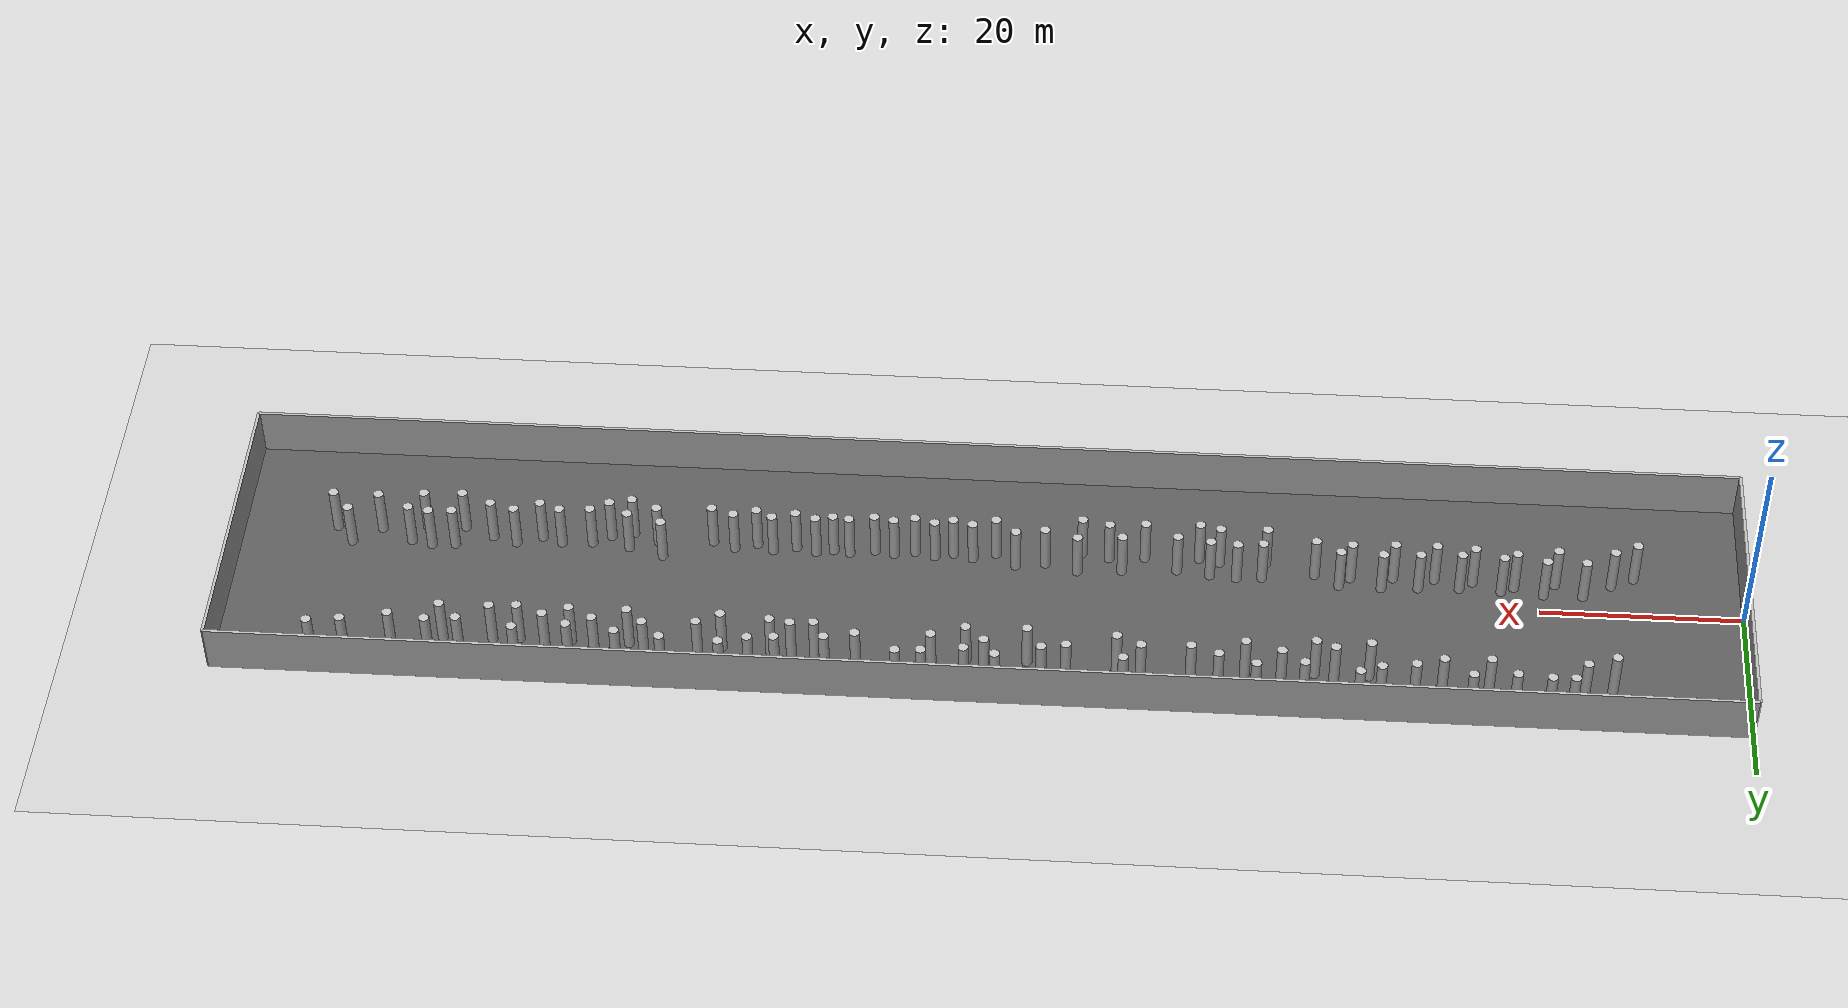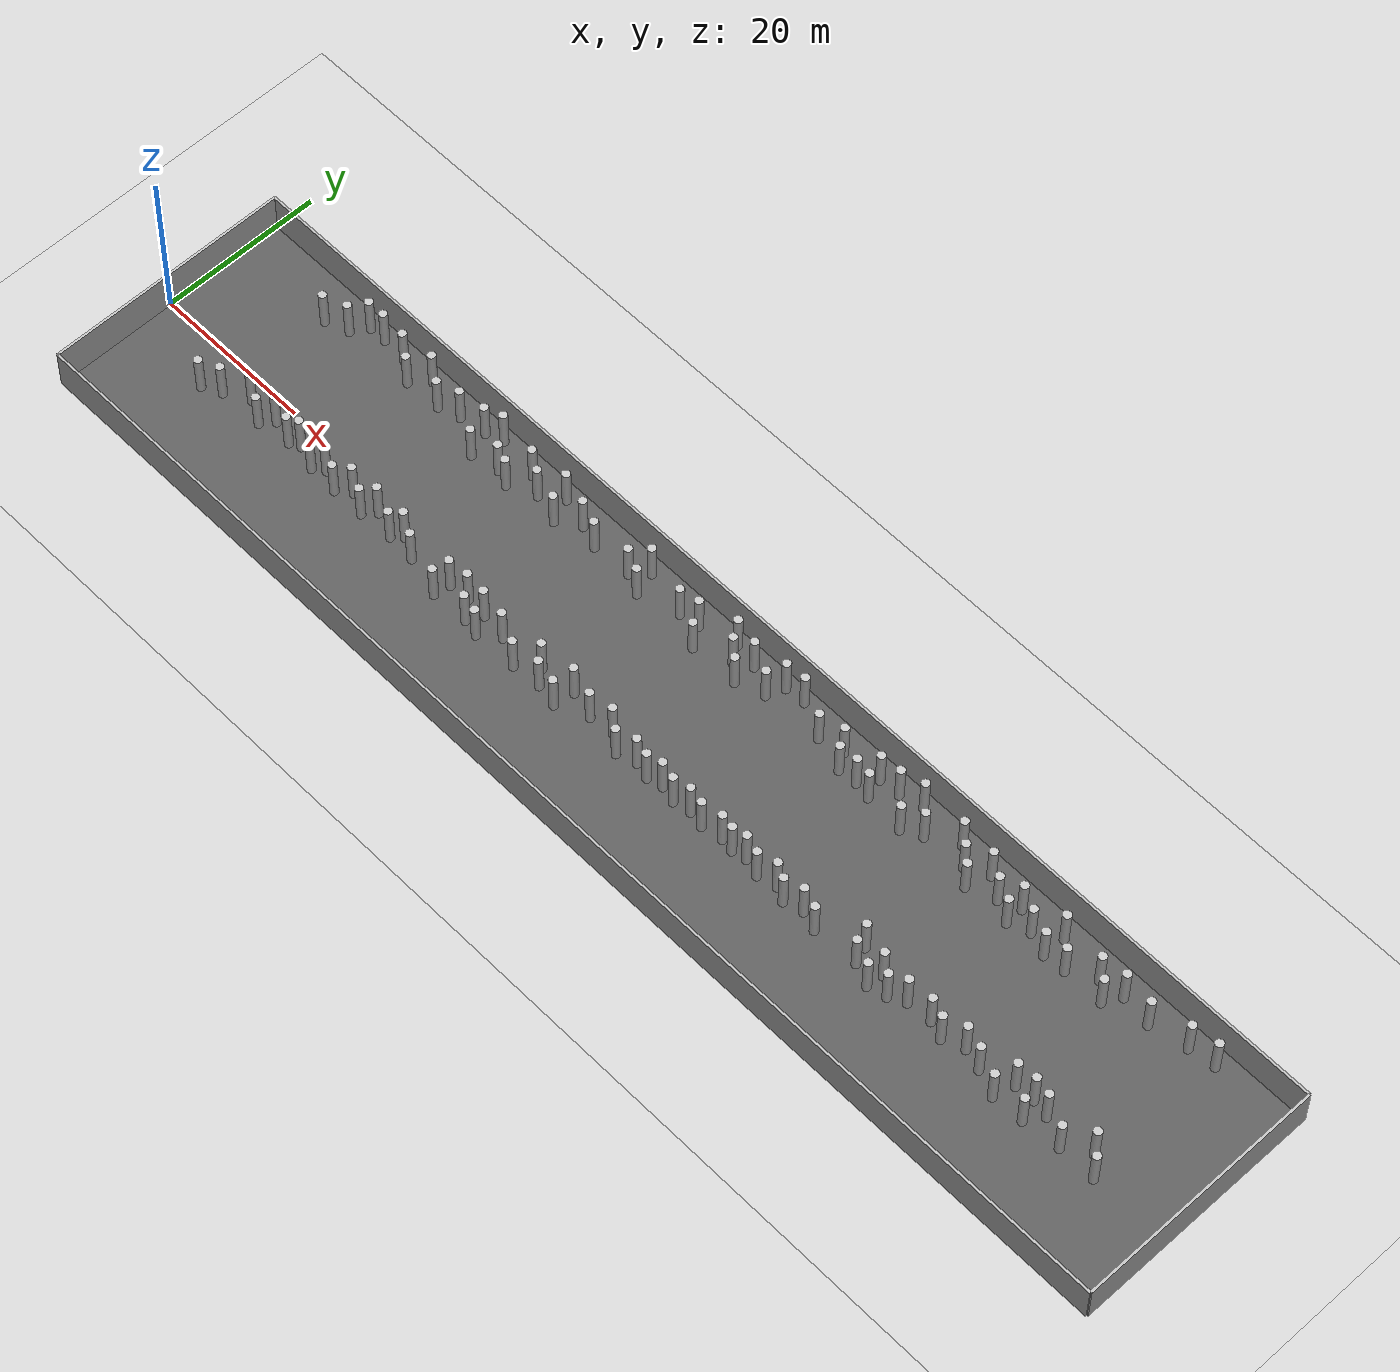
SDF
<?xml version="1.0" ?>
<sdf version="1.5">
  <world name="default">
    <plugin name="gazebo_ros_state" filename="libgazebo_ros_state.so">
      <ros>
        <namespace>/gazebo</namespace>
      </ros>
      <update_rate>20.0</update_rate>
    </plugin>

    <include><uri>model://sun</uri></include>
    <include><uri>model://ground_plane</uri></include>

    <model name="corridor_floor">
      <static>true</static>
      <pose>75 0 0.01 0 0 0</pose>
      <link name="link">
        <collision name="collision">
          <geometry><box><size>150 30 0.02</size></box></geometry>
        </collision>
        <visual name="visual">
          <geometry><box><size>150 30 0.02</size></box></geometry>
          <material>
            <ambient>0.25 0.25 0.25 1</ambient>
            <diffuse>0.35 0.35 0.35 1</diffuse>
          </material>
        </visual>
      </link>
    </model>

    <physics name="default_physics" default="0" type="ode">
      <gravity>0 0 -9.8066</gravity>
      <ode>
        <solver>
          <type>quick</type>
          <iters>10</iters>
          <sor>1.3</sor>
          <use_dynamic_moi_rescaling>0</use_dynamic_moi_rescaling>
        </solver>
        <constraints>
          <cfm>0</cfm>
          <erp>0.2</erp>
          <contact_max_correcting_vel>100</contact_max_correcting_vel>
          <contact_surface_layer>0.001</contact_surface_layer>
        </constraints>
      </ode>
      <max_step_size>0.004</max_step_size>
      <real_time_factor>1</real_time_factor>
      <real_time_update_rate>250</real_time_update_rate>
      <magnetic_field>6.0e-6 2.3e-5 -4.2e-5</magnetic_field>
    </physics>

    <model name="left_wall">
      <static>true</static>
      <pose>75 15.15 2.5 0 0 0</pose>
      <link name="link">
        <collision name="collision">
          <geometry><box><size>150 0.3 5</size></box></geometry>
        </collision>
        <visual name="visual">
          <geometry><box><size>150 0.3 5</size></box></geometry>
        </visual>
      </link>
    </model>

    <model name="right_wall">
      <static>true</static>
      <pose>75 -15.15 2.5 0 0 0</pose>
      <link name="link">
        <collision name="collision">
          <geometry><box><size>150 0.3 5</size></box></geometry>
        </collision>
        <visual name="visual">
          <geometry><box><size>150 0.3 5</size></box></geometry>
        </visual>
      </link>
    </model>

    <model name="start_wall">
      <static>true</static>
      <pose>0 0 2.5 0 0 0</pose>
      <link name="link">
        <collision name="collision">
          <geometry><box><size>0.3 30.3 5</size></box></geometry>
        </collision>
        <visual name="visual">
          <geometry><box><size>0.3 30.3 5</size></box></geometry>
        </visual>
      </link>
    </model>

    <model name="end_wall">
      <static>true</static>
      <pose>150 0 2.5 0 0 0</pose>
      <link name="link">
        <collision name="collision">
          <geometry><box><size>0.3 30.3 5</size></box></geometry>
        </collision>
        <visual name="visual">
          <geometry><box><size>0.3 30.3 5</size></box></geometry>
        </visual>
      </link>
    </model>

    <include><name>cylinder_000</name><uri>model://cylinder_r05_h5</uri><pose>18.463 -3.710 2.5 0 0 0</pose></include>
    <include><name>cylinder_001</name><uri>model://cylinder_r05_h5</uri><pose>15.746 -2.245 2.5 0 0 0</pose></include>
    <include><name>cylinder_002</name><uri>model://cylinder_r05_h5</uri><pose>22.538 -3.069 2.5 0 0 0</pose></include>
    <include><name>cylinder_003</name><uri>model://cylinder_r05_h5</uri><pose>19.634 -2.213 2.5 0 0 0</pose></include>
    <include><name>cylinder_004</name><uri>model://cylinder_r05_h5</uri><pose>26.650 -3.523 2.5 0 0 0</pose></include>
    <include><name>cylinder_005</name><uri>model://cylinder_r05_h5</uri><pose>23.834 -2.443 2.5 0 0 0</pose></include>
    <include><name>cylinder_006</name><uri>model://cylinder_r05_h5</uri><pose>30.423 -3.681 2.5 0 0 0</pose></include>
    <include><name>cylinder_007</name><uri>model://cylinder_r05_h5</uri><pose>27.963 -2.594 2.5 0 0 0</pose></include>
    <include><name>cylinder_008</name><uri>model://cylinder_r05_h5</uri><pose>34.527 -3.612 2.5 0 0 0</pose></include>
    <include><name>cylinder_009</name><uri>model://cylinder_r05_h5</uri><pose>32.041 -2.401 2.5 0 0 0</pose></include>
    <include><name>cylinder_010</name><uri>model://cylinder_r05_h5</uri><pose>38.775 -3.369 2.5 0 0 0</pose></include>
    <include><name>cylinder_011</name><uri>model://cylinder_r05_h5</uri><pose>35.704 -2.204 2.5 0 0 0</pose></include>
    <include><name>cylinder_012</name><uri>model://cylinder_r05_h5</uri><pose>42.327 -3.595 2.5 0 0 0</pose></include>
    <include><name>cylinder_013</name><uri>model://cylinder_r05_h5</uri><pose>39.889 -2.289 2.5 0 0 0</pose></include>
    <include><name>cylinder_014</name><uri>model://cylinder_r05_h5</uri><pose>56.024 -3.386 2.5 0 0 0</pose></include>
    <include><name>cylinder_015</name><uri>model://cylinder_r05_h5</uri><pose>59.267 -4.938 2.5 0 0 0</pose></include>
    <include><name>cylinder_016</name><uri>model://cylinder_r05_h5</uri><pose>62.837 -4.637 2.5 0 0 0</pose></include>
    <include><name>cylinder_017</name><uri>model://cylinder_r05_h5</uri><pose>69.181 -3.509 2.5 0 0 0</pose></include>
    <include><name>cylinder_018</name><uri>model://cylinder_r05_h5</uri><pose>50.089 -2.686 2.5 0 0 0</pose></include>
    <include><name>cylinder_019</name><uri>model://cylinder_r05_h5</uri><pose>47.185 -4.900 2.5 0 0 0</pose></include>
    <include><name>cylinder_020</name><uri>model://cylinder_r05_h5</uri><pose>65.542 -5.155 2.5 0 0 0</pose></include>
    <include><name>cylinder_021</name><uri>model://cylinder_r05_h5</uri><pose>74.131 -4.568 2.5 0 0 0</pose></include>
    <include><name>cylinder_022</name><uri>model://cylinder_r05_h5</uri><pose>51.802 -4.708 2.5 0 0 0</pose></include>
    <include><name>cylinder_023</name><uri>model://cylinder_r05_h5</uri><pose>52.746 -2.908 2.5 0 0 0</pose></include>
    <include><name>cylinder_024</name><uri>model://cylinder_r05_h5</uri><pose>47.565 -2.916 2.5 0 0 0</pose></include>
    <include><name>cylinder_025</name><uri>model://cylinder_r05_h5</uri><pose>72.103 -3.058 2.5 0 0 0</pose></include>
    <include><name>cylinder_026</name><uri>model://cylinder_r05_h5</uri><pose>65.942 -2.637 2.5 0 0 0</pose></include>
    <include><name>cylinder_027</name><uri>model://cylinder_r05_h5</uri><pose>61.505 -2.989 2.5 0 0 0</pose></include>
    <include><name>cylinder_028</name><uri>model://cylinder_r05_h5</uri><pose>53.845 -5.139 2.5 0 0 0</pose></include>
    <include><name>cylinder_029</name><uri>model://cylinder_r05_h5</uri><pose>78.372 -4.311 2.5 0 0 0</pose></include>
    <include><name>cylinder_030</name><uri>model://cylinder_r05_h5</uri><pose>76.428 -3.815 2.5 0 0 0</pose></include>
    <include><name>cylinder_031</name><uri>model://cylinder_r05_h5</uri><pose>82.208 -4.325 2.5 0 0 0</pose></include>
    <include><name>cylinder_032</name><uri>model://cylinder_r05_h5</uri><pose>80.218 -3.846 2.5 0 0 0</pose></include>
    <include><name>cylinder_033</name><uri>model://cylinder_r05_h5</uri><pose>86.242 -4.267 2.5 0 0 0</pose></include>
    <include><name>cylinder_034</name><uri>model://cylinder_r05_h5</uri><pose>84.302 -3.887 2.5 0 0 0</pose></include>
    <include><name>cylinder_035</name><uri>model://cylinder_r05_h5</uri><pose>90.384 -4.038 2.5 0 0 0</pose></include>
    <include><name>cylinder_036</name><uri>model://cylinder_r05_h5</uri><pose>88.764 -3.806 2.5 0 0 0</pose></include>
    <include><name>cylinder_037</name><uri>model://cylinder_r05_h5</uri><pose>94.134 -4.256 2.5 0 0 0</pose></include>
    <include><name>cylinder_038</name><uri>model://cylinder_r05_h5</uri><pose>92.108 -3.673 2.5 0 0 0</pose></include>
    <include><name>cylinder_039</name><uri>model://cylinder_r05_h5</uri><pose>98.078 -4.454 2.5 0 0 0</pose></include>
    <include><name>cylinder_040</name><uri>model://cylinder_r05_h5</uri><pose>96.440 -3.659 2.5 0 0 0</pose></include>
    <include><name>cylinder_041</name><uri>model://cylinder_r05_h5</uri><pose>102.528 -4.503 2.5 0 0 0</pose></include>
    <include><name>cylinder_042</name><uri>model://cylinder_r05_h5</uri><pose>100.321 -3.788 2.5 0 0 0</pose></include>
    <include><name>cylinder_043</name><uri>model://cylinder_r05_h5</uri><pose>114.632 -3.623 2.5 0 0 0</pose></include>
    <include><name>cylinder_044</name><uri>model://cylinder_r05_h5</uri><pose>122.223 -3.164 2.5 0 0 0</pose></include>
    <include><name>cylinder_045</name><uri>model://cylinder_r05_h5</uri><pose>119.711 -4.142 2.5 0 0 0</pose></include>
    <include><name>cylinder_046</name><uri>model://cylinder_r05_h5</uri><pose>108.039 -4.147 2.5 0 0 0</pose></include>
    <include><name>cylinder_047</name><uri>model://cylinder_r05_h5</uri><pose>132.756 -2.816 2.5 0 0 0</pose></include>
    <include><name>cylinder_048</name><uri>model://cylinder_r05_h5</uri><pose>112.800 -4.633 2.5 0 0 0</pose></include>
    <include><name>cylinder_049</name><uri>model://cylinder_r05_h5</uri><pose>128.354 -2.574 2.5 0 0 0</pose></include>
    <include><name>cylinder_050</name><uri>model://cylinder_r05_h5</uri><pose>130.682 -2.411 2.5 0 0 0</pose></include>
    <include><name>cylinder_051</name><uri>model://cylinder_r05_h5</uri><pose>117.686 -3.432 2.5 0 0 0</pose></include>
    <include><name>cylinder_052</name><uri>model://cylinder_r05_h5</uri><pose>107.414 -2.225 2.5 0 0 0</pose></include>
    <include><name>cylinder_053</name><uri>model://cylinder_r05_h5</uri><pose>110.872 -3.200 2.5 0 0 0</pose></include>
    <include><name>cylinder_054</name><uri>model://cylinder_r05_h5</uri><pose>110.591 -5.193 2.5 0 0 0</pose></include>
    <include><name>cylinder_055</name><uri>model://cylinder_r05_h5</uri><pose>127.624 -5.034 2.5 0 0 0</pose></include>
    <include><name>cylinder_056</name><uri>model://cylinder_r05_h5</uri><pose>124.659 -3.868 2.5 0 0 0</pose></include>
    <include><name>cylinder_057</name><uri>model://cylinder_r05_h5</uri><pose>131.451 -4.837 2.5 0 0 0</pose></include>
    <include><name>cylinder_058</name><uri>model://cylinder_r05_h5</uri><pose>12.902 -3.852 2.5 0 0 0</pose></include>
    <include><name>cylinder_059</name><uri>model://cylinder_r05_h5</uri><pose>10.640 -4.936 2.5 0 0 0</pose></include>
    <include><name>cylinder_060</name><uri>model://cylinder_r05_h5</uri><pose>135.960 -4.357 2.5 0 0 0</pose></include>
    <include><name>cylinder_061</name><uri>model://cylinder_r05_h5</uri><pose>140.493 -4.349 2.5 0 0 0</pose></include>
    <include><name>cylinder_062</name><uri>model://cylinder_r05_h5</uri><pose>138.733 -2.377 2.5 0 0 0</pose></include>
    <include><name>cylinder_063</name><uri>model://cylinder_r05_h5</uri><pose>94.722 12.499 2.5 0 0 0</pose></include>
    <include><name>cylinder_064</name><uri>model://cylinder_r05_h5</uri><pose>76.231 10.029 2.5 0 0 0</pose></include>
    <include><name>cylinder_065</name><uri>model://cylinder_r05_h5</uri><pose>54.304 11.102 2.5 0 0 0</pose></include>
    <include><name>cylinder_066</name><uri>model://cylinder_r05_h5</uri><pose>79.571 11.183 2.5 0 0 0</pose></include>
    <include><name>cylinder_067</name><uri>model://cylinder_r05_h5</uri><pose>127.698 10.102 2.5 0 0 0</pose></include>
    <include><name>cylinder_068</name><uri>model://cylinder_r05_h5</uri><pose>102.442 10.959 2.5 0 0 0</pose></include>
    <include><name>cylinder_069</name><uri>model://cylinder_r05_h5</uri><pose>16.092 11.203 2.5 0 0 0</pose></include>
    <include><name>cylinder_070</name><uri>model://cylinder_r05_h5</uri><pose>120.230 12.659 2.5 0 0 0</pose></include>
    <include><name>cylinder_071</name><uri>model://cylinder_r05_h5</uri><pose>132.553 11.617 2.5 0 0 0</pose></include>
    <include><name>cylinder_072</name><uri>model://cylinder_r05_h5</uri><pose>43.307 12.622 2.5 0 0 0</pose></include>
    <include><name>cylinder_073</name><uri>model://cylinder_r05_h5</uri><pose>122.790 10.038 2.5 0 0 0</pose></include>
    <include><name>cylinder_074</name><uri>model://cylinder_r05_h5</uri><pose>49.045 10.247 2.5 0 0 0</pose></include>
    <include><name>cylinder_075</name><uri>model://cylinder_r05_h5</uri><pose>80.396 13.300 2.5 0 0 0</pose></include>
    <include><name>cylinder_076</name><uri>model://cylinder_r05_h5</uri><pose>117.506 10.789 2.5 0 0 0</pose></include>
    <include><name>cylinder_077</name><uri>model://cylinder_r05_h5</uri><pose>91.034 10.328 2.5 0 0 0</pose></include>
    <include><name>cylinder_078</name><uri>model://cylinder_r05_h5</uri><pose>93.312 10.499 2.5 0 0 0</pose></include>
    <include><name>cylinder_079</name><uri>model://cylinder_r05_h5</uri><pose>59.162 11.329 2.5 0 0 0</pose></include>
    <include><name>cylinder_080</name><uri>model://cylinder_r05_h5</uri><pose>128.832 12.118 2.5 0 0 0</pose></include>
    <include><name>cylinder_081</name><uri>model://cylinder_r05_h5</uri><pose>27.118 13.216 2.5 0 0 0</pose></include>
    <include><name>cylinder_082</name><uri>model://cylinder_r05_h5</uri><pose>32.577 12.198 2.5 0 0 0</pose></include>
    <include><name>cylinder_083</name><uri>model://cylinder_r05_h5</uri><pose>40.355 10.476 2.5 0 0 0</pose></include>
    <include><name>cylinder_084</name><uri>model://cylinder_r05_h5</uri><pose>137.067 12.560 2.5 0 0 0</pose></include>
    <include><name>cylinder_085</name><uri>model://cylinder_r05_h5</uri><pose>73.230 13.405 2.5 0 0 0</pose></include>
    <include><name>cylinder_086</name><uri>model://cylinder_r05_h5</uri><pose>36.931 9.736 2.5 0 0 0</pose></include>
    <include><name>cylinder_087</name><uri>model://cylinder_r05_h5</uri><pose>100.054 13.363 2.5 0 0 0</pose></include>
    <include><name>cylinder_088</name><uri>model://cylinder_r05_h5</uri><pose>47.986 13.070 2.5 0 0 0</pose></include>
    <include><name>cylinder_089</name><uri>model://cylinder_r05_h5</uri><pose>66.413 11.742 2.5 0 0 0</pose></include>
    <include><name>cylinder_090</name><uri>model://cylinder_r05_h5</uri><pose>107.693 11.296 2.5 0 0 0</pose></include>
    <include><name>cylinder_091</name><uri>model://cylinder_r05_h5</uri><pose>76.290 12.783 2.5 0 0 0</pose></include>
    <include><name>cylinder_092</name><uri>model://cylinder_r05_h5</uri><pose>97.279 12.675 2.5 0 0 0</pose></include>
    <include><name>cylinder_093</name><uri>model://cylinder_r05_h5</uri><pose>37.989 13.431 2.5 0 0 0</pose></include>
    <include><name>cylinder_094</name><uri>model://cylinder_r05_h5</uri><pose>109.344 9.797 2.5 0 0 0</pose></include>
    <include><name>cylinder_095</name><uri>model://cylinder_r05_h5</uri><pose>125.824 11.819 2.5 0 0 0</pose></include>
    <include><name>cylinder_096</name><uri>model://cylinder_r05_h5</uri><pose>74.381 11.589 2.5 0 0 0</pose></include>
    <include><name>cylinder_097</name><uri>model://cylinder_r05_h5</uri><pose>140.252 12.984 2.5 0 0 0</pose></include>
    <include><name>cylinder_098</name><uri>model://cylinder_r05_h5</uri><pose>35.901 12.681 2.5 0 0 0</pose></include>
    <include><name>cylinder_099</name><uri>model://cylinder_r05_h5</uri><pose>51.627 12.016 2.5 0 0 0</pose></include>
    <include><name>cylinder_100</name><uri>model://cylinder_r05_h5</uri><pose>29.912 11.368 2.5 0 0 0</pose></include>
    <include><name>cylinder_101</name><uri>model://cylinder_r05_h5</uri><pose>70.273 9.865 2.5 0 0 0</pose></include>
    <include><name>cylinder_102</name><uri>model://cylinder_r05_h5</uri><pose>82.895 13.462 2.5 0 0 0</pose></include>
    <include><name>cylinder_103</name><uri>model://cylinder_r05_h5</uri><pose>60.828 13.117 2.5 0 0 0</pose></include>
    <include><name>cylinder_104</name><uri>model://cylinder_r05_h5</uri><pose>100.184 9.792 2.5 0 0 0</pose></include>
    <include><name>cylinder_105</name><uri>model://cylinder_r05_h5</uri><pose>115.031 12.055 2.5 0 0 0</pose></include>
    <include><name>cylinder_106</name><uri>model://cylinder_r05_h5</uri><pose>95.353 10.172 2.5 0 0 0</pose></include>
    <include><name>cylinder_107</name><uri>model://cylinder_r05_h5</uri><pose>89.897 12.142 2.5 0 0 0</pose></include>
    <include><name>cylinder_108</name><uri>model://cylinder_r05_h5</uri><pose>86.925 11.484 2.5 0 0 0</pose></include>
    <include><name>cylinder_109</name><uri>model://cylinder_r05_h5</uri><pose>61.535 10.280 2.5 0 0 0</pose></include>
    <include><name>cylinder_110</name><uri>model://cylinder_r05_h5</uri><pose>45.518 11.248 2.5 0 0 0</pose></include>
    <include><name>cylinder_111</name><uri>model://cylinder_r05_h5</uri><pose>13.278 10.205 2.5 0 0 0</pose></include>
    <include><name>cylinder_112</name><uri>model://cylinder_r05_h5</uri><pose>115.023 9.835 2.5 0 0 0</pose></include>
    <include><name>cylinder_113</name><uri>model://cylinder_r05_h5</uri><pose>25.351 11.164 2.5 0 0 0</pose></include>
    <include><name>cylinder_114</name><uri>model://cylinder_r05_h5</uri><pose>112.627 11.034 2.5 0 0 0</pose></include>
    <include><name>cylinder_115</name><uri>model://cylinder_r05_h5</uri><pose>42.238 9.759 2.5 0 0 0</pose></include>
    <include><name>cylinder_116</name><uri>model://cylinder_r05_h5</uri><pose>105.814 13.063 2.5 0 0 0</pose></include>
    <include><name>cylinder_117</name><uri>model://cylinder_r05_h5</uri><pose>19.575 13.170 2.5 0 0 0</pose></include>
    <include><name>cylinder_118</name><uri>model://cylinder_r05_h5</uri><pose>17.365 13.125 2.5 0 0 0</pose></include>
    <include><name>cylinder_119</name><uri>model://cylinder_r05_h5</uri><pose>68.803 12.156 2.5 0 0 0</pose></include>
    <include><name>cylinder_120</name><uri>model://cylinder_r05_h5</uri><pose>22.896 12.919 2.5 0 0 0</pose></include>
    <include><name>cylinder_121</name><uri>model://cylinder_r05_h5</uri><pose>110.244 12.620 2.5 0 0 0</pose></include>
    <include><name>cylinder_122</name><uri>model://cylinder_r05_h5</uri><pose>120.133 9.841 2.5 0 0 0</pose></include>

  </world>
</sdf>

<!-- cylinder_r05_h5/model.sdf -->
<sdf version="1.5">
  <model name="cylinder_r05_h5">
    <static>true</static>
    <link name="link">
      <collision name="collision">
        <geometry>
          <cylinder>
            <radius>0.5</radius>
            <length>5</length>
          </cylinder>
        </geometry>
      </collision>
      <visual name="visual">
        <geometry>
          <cylinder>
            <radius>0.5</radius>
            <length>5</length>
          </cylinder>
        </geometry>
        <material>
          <ambient>0.5 0.5 0.5 1</ambient>
          <diffuse>0.75 0.75 0.75 1</diffuse>
        </material>
      </visual>
    </link>
  </model>
</sdf>
